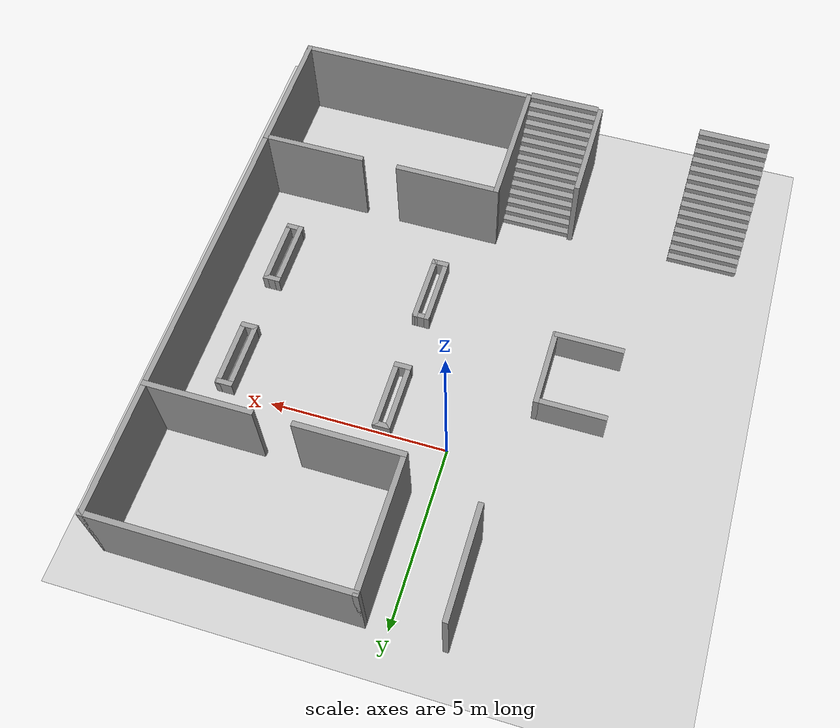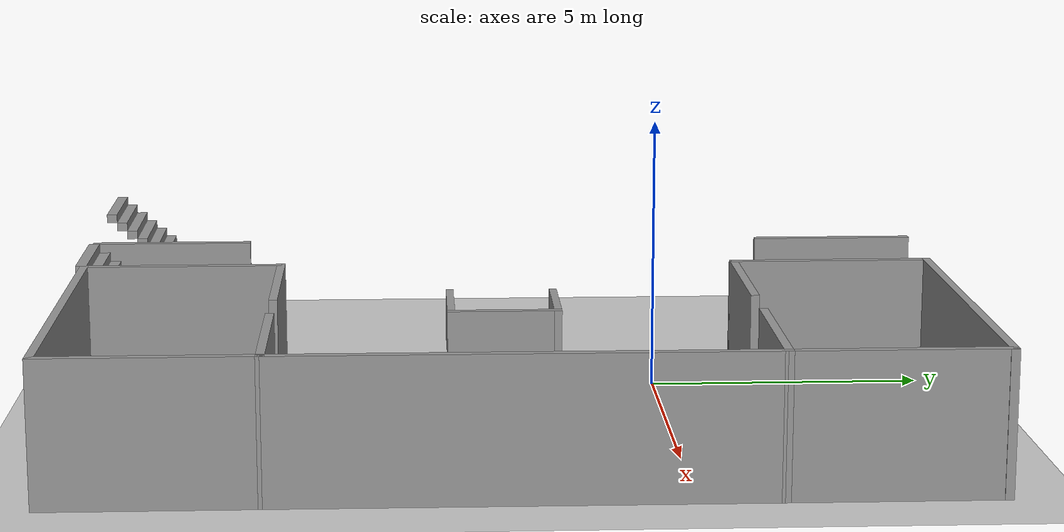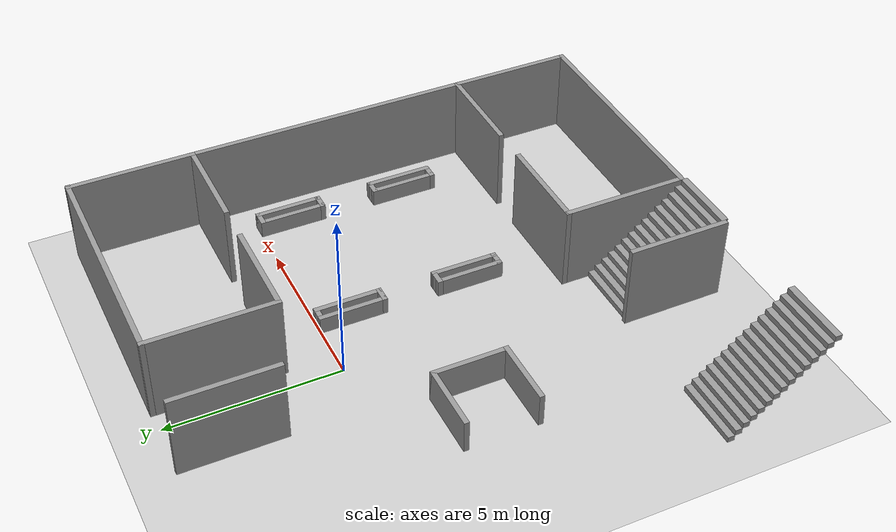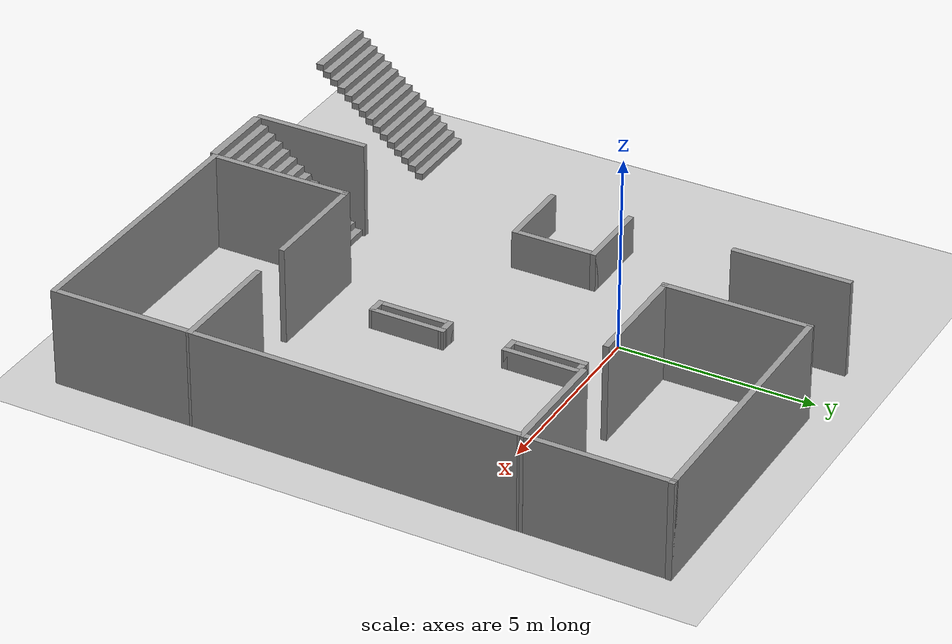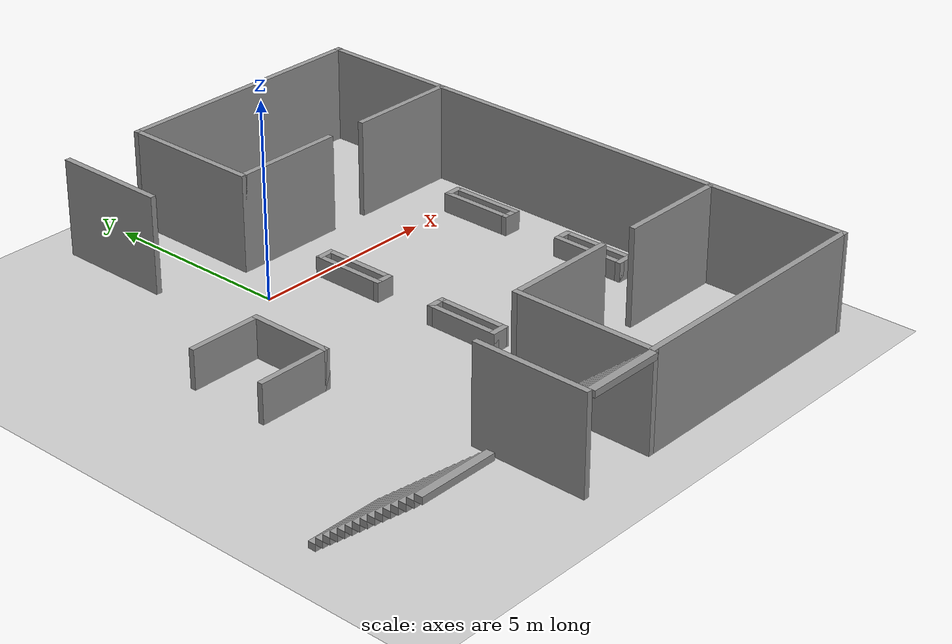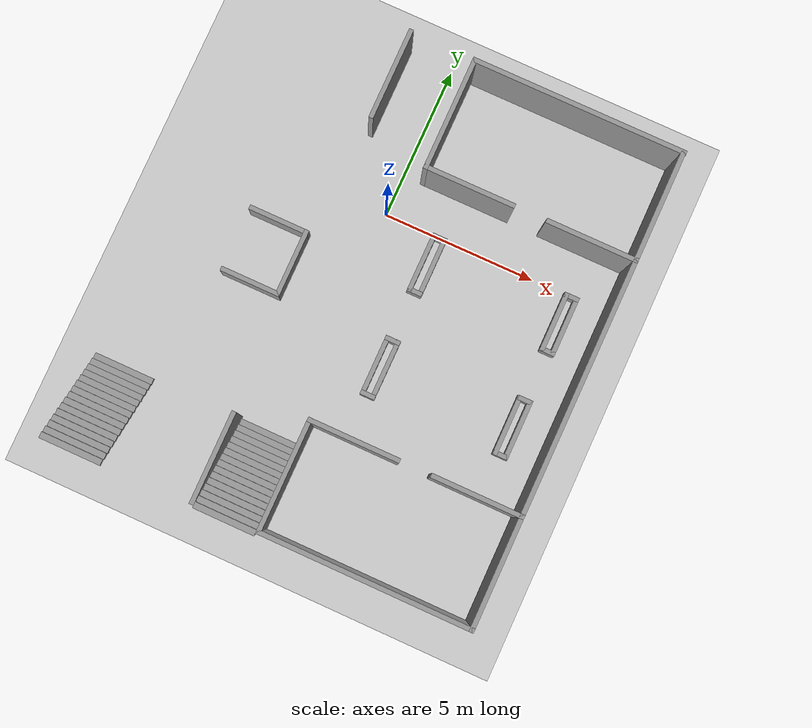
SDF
<sdf version="1.7">
 <world name="default">
  <model name="ground_plane">
   <static>1</static>
   <link name="link">
    <collision name="collision">
     <geometry><plane><normal>0 0 1</normal><size>100 100</size></plane></geometry>
     <surface>
      <contact><collide_bitmask>65535</collide_bitmask></contact>
      <friction><ode><mu>100</mu><mu2>50</mu2></ode></friction>
     </surface>
    </collision>
    <visual name="visual">
     <cast_shadows>0</cast_shadows>
     <geometry><plane><normal>0 0 1</normal><size>100 100</size></plane></geometry>
     <material>
      <script><uri>file://media/materials/scripts/gazebo.material</uri><name>Gazebo/Grey</name></script>
     </material>
    </visual>
   </link>
  </model>
  <model name="Lobby">
   <pose>-2.92426 -2.79933 0 0 -0 0</pose>
   <link name="Stairs_2">
    <visual name="Stairs_2_Visual_0">
     <pose>-2.50769 -5.00037 0.083333 0 -0 0</pose>
     <geometry><box><size>2 0.2 0.166667</size></box></geometry>
     <material>
      <script><uri>file://media/materials/scripts/gazebo.material</uri><name>Gazebo/Grey</name></script>
      <ambient>1 1 1 1</ambient>
     </material>
     <meta><layer>0</layer></meta>
    </visual>
    <collision name="Stairs_2_Collision_0">
     <geometry><box><size>2 0.2 0.166667</size></box></geometry>
     <pose>-2.50769 -5.00037 0.083333 0 -0 0</pose>
    </collision>
    <visual name="Stairs_2_Visual_1">
     <pose>-2.50769 -5.20037 0.25 0 -0 0</pose>
     <geometry><box><size>2 0.2 0.166667</size></box></geometry>
     <material>
      <script><uri>file://media/materials/scripts/gazebo.material</uri><name>Gazebo/Grey</name></script>
      <ambient>1 1 1 1</ambient>
     </material>
     <meta><layer>0</layer></meta>
    </visual>
    <collision name="Stairs_2_Collision_1">
     <geometry><box><size>2 0.2 0.166667</size></box></geometry>
     <pose>-2.50769 -5.20037 0.25 0 -0 0</pose>
    </collision>
    <visual name="Stairs_2_Visual_2">
     <pose>-2.50769 -5.40037 0.416667 0 -0 0</pose>
     <geometry><box><size>2 0.2 0.166667</size></box></geometry>
     <material>
      <script><uri>file://media/materials/scripts/gazebo.material</uri><name>Gazebo/Grey</name></script>
      <ambient>1 1 1 1</ambient>
     </material>
     <meta><layer>0</layer></meta>
    </visual>
    <collision name="Stairs_2_Collision_2">
     <geometry><box><size>2 0.2 0.166667</size></box></geometry>
     <pose>-2.50769 -5.40037 0.416667 0 -0 0</pose>
    </collision>
    <visual name="Stairs_2_Visual_3">
     <pose>-2.50769 -5.60037 0.583333 0 -0 0</pose>
     <geometry><box><size>2 0.2 0.166667</size></box></geometry>
     <material>
      <script><uri>file://media/materials/scripts/gazebo.material</uri><name>Gazebo/Grey</name></script>
      <ambient>1 1 1 1</ambient>
     </material>
     <meta><layer>0</layer></meta>
    </visual>
    <collision name="Stairs_2_Collision_3">
     <geometry><box><size>2 0.2 0.166667</size></box></geometry>
     <pose>-2.50769 -5.60037 0.583333 0 -0 0</pose>
    </collision>
    <visual name="Stairs_2_Visual_4">
     <pose>-2.50769 -5.80037 0.75 0 -0 0</pose>
     <geometry><box><size>2 0.2 0.166667</size></box></geometry>
     <material>
      <script><uri>file://media/materials/scripts/gazebo.material</uri><name>Gazebo/Grey</name></script>
      <ambient>1 1 1 1</ambient>
     </material>
     <meta><layer>0</layer></meta>
    </visual>
    <collision name="Stairs_2_Collision_4">
     <geometry><box><size>2 0.2 0.166667</size></box></geometry>
     <pose>-2.50769 -5.80037 0.75 0 -0 0</pose>
    </collision>
    <visual name="Stairs_2_Visual_5">
     <pose>-2.50769 -6.00037 0.916667 0 -0 0</pose>
     <geometry><box><size>2 0.2 0.166667</size></box></geometry>
     <material>
      <script><uri>file://media/materials/scripts/gazebo.material</uri><name>Gazebo/Grey</name></script>
      <ambient>1 1 1 1</ambient>
     </material>
     <meta><layer>0</layer></meta>
    </visual>
    <collision name="Stairs_2_Collision_5">
     <geometry><box><size>2 0.2 0.166667</size></box></geometry>
     <pose>-2.50769 -6.00037 0.916667 0 -0 0</pose>
    </collision>
    <visual name="Stairs_2_Visual_6">
     <pose>-2.50769 -6.20037 1.08333 0 -0 0</pose>
     <geometry><box><size>2 0.2 0.166667</size></box></geometry>
     <material>
      <script><uri>file://media/materials/scripts/gazebo.material</uri><name>Gazebo/Grey</name></script>
      <ambient>1 1 1 1</ambient>
     </material>
     <meta><layer>0</layer></meta>
    </visual>
    <collision name="Stairs_2_Collision_6">
     <geometry><box><size>2 0.2 0.166667</size></box></geometry>
     <pose>-2.50769 -6.20037 1.08333 0 -0 0</pose>
    </collision>
    <visual name="Stairs_2_Visual_7">
     <pose>-2.50769 -6.40037 1.25 0 -0 0</pose>
     <geometry><box><size>2 0.2 0.166667</size></box></geometry>
     <material>
      <script><uri>file://media/materials/scripts/gazebo.material</uri><name>Gazebo/Grey</name></script>
      <ambient>1 1 1 1</ambient>
     </material>
     <meta><layer>0</layer></meta>
    </visual>
    <collision name="Stairs_2_Collision_7">
     <geometry><box><size>2 0.2 0.166667</size></box></geometry>
     <pose>-2.50769 -6.40037 1.25 0 -0 0</pose>
    </collision>
    <visual name="Stairs_2_Visual_8">
     <pose>-2.50769 -6.60037 1.41667 0 -0 0</pose>
     <geometry><box><size>2 0.2 0.166667</size></box></geometry>
     <material>
      <script><uri>file://media/materials/scripts/gazebo.material</uri><name>Gazebo/Grey</name></script>
      <ambient>1 1 1 1</ambient>
     </material>
     <meta><layer>0</layer></meta>
    </visual>
    <collision name="Stairs_2_Collision_8">
     <geometry><box><size>2 0.2 0.166667</size></box></geometry>
     <pose>-2.50769 -6.60037 1.41667 0 -0 0</pose>
    </collision>
    <visual name="Stairs_2_Visual_9">
     <pose>-2.50769 -6.80037 1.58333 0 -0 0</pose>
     <geometry><box><size>2 0.2 0.166667</size></box></geometry>
     <material>
      <script><uri>file://media/materials/scripts/gazebo.material</uri><name>Gazebo/Grey</name></script>
      <ambient>1 1 1 1</ambient>
     </material>
     <meta><layer>0</layer></meta>
    </visual>
    <collision name="Stairs_2_Collision_9">
     <geometry><box><size>2 0.2 0.166667</size></box></geometry>
     <pose>-2.50769 -6.80037 1.58333 0 -0 0</pose>
    </collision>
    <visual name="Stairs_2_Visual_10">
     <pose>-2.50769 -7.00037 1.75 0 -0 0</pose>
     <geometry><box><size>2 0.2 0.166667</size></box></geometry>
     <material>
      <script><uri>file://media/materials/scripts/gazebo.material</uri><name>Gazebo/Grey</name></script>
      <ambient>1 1 1 1</ambient>
     </material>
     <meta><layer>0</layer></meta>
    </visual>
    <collision name="Stairs_2_Collision_10">
     <geometry><box><size>2 0.2 0.166667</size></box></geometry>
     <pose>-2.50769 -7.00037 1.75 0 -0 0</pose>
    </collision>
    <visual name="Stairs_2_Visual_11">
     <pose>-2.50769 -7.20037 1.91667 0 -0 0</pose>
     <geometry><box><size>2 0.2 0.166667</size></box></geometry>
     <material>
      <script><uri>file://media/materials/scripts/gazebo.material</uri><name>Gazebo/Grey</name></script>
      <ambient>1 1 1 1</ambient>
     </material>
     <meta><layer>0</layer></meta>
    </visual>
    <collision name="Stairs_2_Collision_11">
     <geometry><box><size>2 0.2 0.166667</size></box></geometry>
     <pose>-2.50769 -7.20037 1.91667 0 -0 0</pose>
    </collision>
    <visual name="Stairs_2_Visual_12">
     <pose>-2.50769 -7.40037 2.08333 0 -0 0</pose>
     <geometry><box><size>2 0.2 0.166667</size></box></geometry>
     <material>
      <script><uri>file://media/materials/scripts/gazebo.material</uri><name>Gazebo/Grey</name></script>
      <ambient>1 1 1 1</ambient>
     </material>
     <meta><layer>0</layer></meta>
    </visual>
    <collision name="Stairs_2_Collision_12">
     <geometry><box><size>2 0.2 0.166667</size></box></geometry>
     <pose>-2.50769 -7.40037 2.08333 0 -0 0</pose>
    </collision>
    <visual name="Stairs_2_Visual_13">
     <pose>-2.50769 -7.60037 2.25 0 -0 0</pose>
     <geometry><box><size>2 0.2 0.166667</size></box></geometry>
     <material>
      <script><uri>file://media/materials/scripts/gazebo.material</uri><name>Gazebo/Grey</name></script>
      <ambient>1 1 1 1</ambient>
     </material>
     <meta><layer>0</layer></meta>
    </visual>
    <collision name="Stairs_2_Collision_13">
     <geometry><box><size>2 0.2 0.166667</size></box></geometry>
     <pose>-2.50769 -7.60037 2.25 0 -0 0</pose>
    </collision>
    <visual name="Stairs_2_Visual_14">
     <pose>-2.50769 -7.80037 2.41667 0 -0 0</pose>
     <geometry><box><size>2 0.2 0.166667</size></box></geometry>
     <material>
      <script><uri>file://media/materials/scripts/gazebo.material</uri><name>Gazebo/Grey</name></script>
      <ambient>1 1 1 1</ambient>
     </material>
     <meta><layer>0</layer></meta>
    </visual>
    <collision name="Stairs_2_Collision_14">
     <geometry><box><size>2 0.2 0.166667</size></box></geometry>
     <pose>-2.50769 -7.80037 2.41667 0 -0 0</pose>
    </collision>
   </link>
   <link name="Stairs_3">
    <visual name="Stairs_3_Visual_0">
     <pose>2.48331 -4.98887 0.083333 0 -0 0</pose>
     <geometry><box><size>2 0.2 0.166667</size></box></geometry>
     <material>
      <script><uri>file://media/materials/scripts/gazebo.material</uri><name>Gazebo/Grey</name></script>
      <ambient>1 1 1 1</ambient>
     </material>
     <meta><layer>0</layer></meta>
    </visual>
    <collision name="Stairs_3_Collision_0">
     <geometry><box><size>2 0.2 0.166667</size></box></geometry>
     <pose>2.48331 -4.98887 0.083333 0 -0 0</pose>
    </collision>
    <visual name="Stairs_3_Visual_1">
     <pose>2.48331 -5.18887 0.25 0 -0 0</pose>
     <geometry><box><size>2 0.2 0.166667</size></box></geometry>
     <material>
      <script><uri>file://media/materials/scripts/gazebo.material</uri><name>Gazebo/Grey</name></script>
      <ambient>1 1 1 1</ambient>
     </material>
     <meta><layer>0</layer></meta>
    </visual>
    <collision name="Stairs_3_Collision_1">
     <geometry><box><size>2 0.2 0.166667</size></box></geometry>
     <pose>2.48331 -5.18887 0.25 0 -0 0</pose>
    </collision>
    <visual name="Stairs_3_Visual_2">
     <pose>2.48331 -5.38887 0.416667 0 -0 0</pose>
     <geometry><box><size>2 0.2 0.166667</size></box></geometry>
     <material>
      <script><uri>file://media/materials/scripts/gazebo.material</uri><name>Gazebo/Grey</name></script>
      <ambient>1 1 1 1</ambient>
     </material>
     <meta><layer>0</layer></meta>
    </visual>
    <collision name="Stairs_3_Collision_2">
     <geometry><box><size>2 0.2 0.166667</size></box></geometry>
     <pose>2.48331 -5.38887 0.416667 0 -0 0</pose>
    </collision>
    <visual name="Stairs_3_Visual_3">
     <pose>2.48331 -5.58887 0.583333 0 -0 0</pose>
     <geometry><box><size>2 0.2 0.166667</size></box></geometry>
     <material>
      <script><uri>file://media/materials/scripts/gazebo.material</uri><name>Gazebo/Grey</name></script>
      <ambient>1 1 1 1</ambient>
     </material>
     <meta><layer>0</layer></meta>
    </visual>
    <collision name="Stairs_3_Collision_3">
     <geometry><box><size>2 0.2 0.166667</size></box></geometry>
     <pose>2.48331 -5.58887 0.583333 0 -0 0</pose>
    </collision>
    <visual name="Stairs_3_Visual_4">
     <pose>2.48331 -5.78887 0.75 0 -0 0</pose>
     <geometry><box><size>2 0.2 0.166667</size></box></geometry>
     <material>
      <script><uri>file://media/materials/scripts/gazebo.material</uri><name>Gazebo/Grey</name></script>
      <ambient>1 1 1 1</ambient>
     </material>
     <meta><layer>0</layer></meta>
    </visual>
    <collision name="Stairs_3_Collision_4">
     <geometry><box><size>2 0.2 0.166667</size></box></geometry>
     <pose>2.48331 -5.78887 0.75 0 -0 0</pose>
    </collision>
    <visual name="Stairs_3_Visual_5">
     <pose>2.48331 -5.98887 0.916667 0 -0 0</pose>
     <geometry><box><size>2 0.2 0.166667</size></box></geometry>
     <material>
      <script><uri>file://media/materials/scripts/gazebo.material</uri><name>Gazebo/Grey</name></script>
      <ambient>1 1 1 1</ambient>
     </material>
     <meta><layer>0</layer></meta>
    </visual>
    <collision name="Stairs_3_Collision_5">
     <geometry><box><size>2 0.2 0.166667</size></box></geometry>
     <pose>2.48331 -5.98887 0.916667 0 -0 0</pose>
    </collision>
    <visual name="Stairs_3_Visual_6">
     <pose>2.48331 -6.18887 1.08333 0 -0 0</pose>
     <geometry><box><size>2 0.2 0.166667</size></box></geometry>
     <material>
      <script><uri>file://media/materials/scripts/gazebo.material</uri><name>Gazebo/Grey</name></script>
      <ambient>1 1 1 1</ambient>
     </material>
     <meta><layer>0</layer></meta>
    </visual>
    <collision name="Stairs_3_Collision_6">
     <geometry><box><size>2 0.2 0.166667</size></box></geometry>
     <pose>2.48331 -6.18887 1.08333 0 -0 0</pose>
    </collision>
    <visual name="Stairs_3_Visual_7">
     <pose>2.48331 -6.38887 1.25 0 -0 0</pose>
     <geometry><box><size>2 0.2 0.166667</size></box></geometry>
     <material>
      <script><uri>file://media/materials/scripts/gazebo.material</uri><name>Gazebo/Grey</name></script>
      <ambient>1 1 1 1</ambient>
     </material>
     <meta><layer>0</layer></meta>
    </visual>
    <collision name="Stairs_3_Collision_7">
     <geometry><box><size>2 0.2 0.166667</size></box></geometry>
     <pose>2.48331 -6.38887 1.25 0 -0 0</pose>
    </collision>
    <visual name="Stairs_3_Visual_8">
     <pose>2.48331 -6.58887 1.41667 0 -0 0</pose>
     <geometry><box><size>2 0.2 0.166667</size></box></geometry>
     <material>
      <script><uri>file://media/materials/scripts/gazebo.material</uri><name>Gazebo/Grey</name></script>
      <ambient>1 1 1 1</ambient>
     </material>
     <meta><layer>0</layer></meta>
    </visual>
    <collision name="Stairs_3_Collision_8">
     <geometry><box><size>2 0.2 0.166667</size></box></geometry>
     <pose>2.48331 -6.58887 1.41667 0 -0 0</pose>
    </collision>
    <visual name="Stairs_3_Visual_9">
     <pose>2.48331 -6.78887 1.58333 0 -0 0</pose>
     <geometry><box><size>2 0.2 0.166667</size></box></geometry>
     <material>
      <script><uri>file://media/materials/scripts/gazebo.material</uri><name>Gazebo/Grey</name></script>
      <ambient>1 1 1 1</ambient>
     </material>
     <meta><layer>0</layer></meta>
    </visual>
    <collision name="Stairs_3_Collision_9">
     <geometry><box><size>2 0.2 0.166667</size></box></geometry>
     <pose>2.48331 -6.78887 1.58333 0 -0 0</pose>
    </collision>
    <visual name="Stairs_3_Visual_10">
     <pose>2.48331 -6.98887 1.75 0 -0 0</pose>
     <geometry><box><size>2 0.2 0.166667</size></box></geometry>
     <material>
      <script><uri>file://media/materials/scripts/gazebo.material</uri><name>Gazebo/Grey</name></script>
      <ambient>1 1 1 1</ambient>
     </material>
     <meta><layer>0</layer></meta>
    </visual>
    <collision name="Stairs_3_Collision_10">
     <geometry><box><size>2 0.2 0.166667</size></box></geometry>
     <pose>2.48331 -6.98887 1.75 0 -0 0</pose>
    </collision>
    <visual name="Stairs_3_Visual_11">
     <pose>2.48331 -7.18887 1.91667 0 -0 0</pose>
     <geometry><box><size>2 0.2 0.166667</size></box></geometry>
     <material>
      <script><uri>file://media/materials/scripts/gazebo.material</uri><name>Gazebo/Grey</name></script>
      <ambient>1 1 1 1</ambient>
     </material>
     <meta><layer>0</layer></meta>
    </visual>
    <collision name="Stairs_3_Collision_11">
     <geometry><box><size>2 0.2 0.166667</size></box></geometry>
     <pose>2.48331 -7.18887 1.91667 0 -0 0</pose>
    </collision>
    <visual name="Stairs_3_Visual_12">
     <pose>2.48331 -7.38887 2.08333 0 -0 0</pose>
     <geometry><box><size>2 0.2 0.166667</size></box></geometry>
     <material>
      <script><uri>file://media/materials/scripts/gazebo.material</uri><name>Gazebo/Grey</name></script>
      <ambient>1 1 1 1</ambient>
     </material>
     <meta><layer>0</layer></meta>
    </visual>
    <collision name="Stairs_3_Collision_12">
     <geometry><box><size>2 0.2 0.166667</size></box></geometry>
     <pose>2.48331 -7.38887 2.08333 0 -0 0</pose>
    </collision>
    <visual name="Stairs_3_Visual_13">
     <pose>2.48331 -7.58887 2.25 0 -0 0</pose>
     <geometry><box><size>2 0.2 0.166667</size></box></geometry>
     <material>
      <script><uri>file://media/materials/scripts/gazebo.material</uri><name>Gazebo/Grey</name></script>
      <ambient>1 1 1 1</ambient>
     </material>
     <meta><layer>0</layer></meta>
    </visual>
    <collision name="Stairs_3_Collision_13">
     <geometry><box><size>2 0.2 0.166667</size></box></geometry>
     <pose>2.48331 -7.58887 2.25 0 -0 0</pose>
    </collision>
    <visual name="Stairs_3_Visual_14">
     <pose>2.48331 -7.78887 2.41667 0 -0 0</pose>
     <geometry><box><size>2 0.2 0.166667</size></box></geometry>
     <material>
      <script><uri>file://media/materials/scripts/gazebo.material</uri><name>Gazebo/Grey</name></script>
      <ambient>1 1 1 1</ambient>
     </material>
     <meta><layer>0</layer></meta>
    </visual>
    <collision name="Stairs_3_Collision_14">
     <geometry><box><size>2 0.2 0.166667</size></box></geometry>
     <pose>2.48331 -7.78887 2.41667 0 -0 0</pose>
    </collision>
   </link>
   <link name="Wall_108">
    <collision name="Wall_108_Collision">
     <geometry><box><size>2 0.15 0.5</size></box></geometry>
     <pose>0 0 0.25 0 -0 0</pose>
    </collision>
    <visual name="Wall_108_Visual">
     <pose>0 0 0.25 0 -0 0</pose>
     <geometry><box><size>2 0.15 0.5</size></box></geometry>
     <material>
      <script><uri>file://media/materials/scripts/gazebo.material</uri><name>Gazebo/Grey</name></script>
      <ambient>1 1 1 1</ambient>
     </material>
     <meta><layer>0</layer></meta>
    </visual>
    <pose>9.42426 1.82533 0 0 -0 -1.5708</pose>
   </link>
   <link name="Wall_109">
    <collision name="Wall_109_Collision">
     <geometry><box><size>0.5 0.15 0.5</size></box></geometry>
     <pose>0 0 0.25 0 -0 0</pose>
    </collision>
    <visual name="Wall_109_Visual">
     <pose>0 0 0.25 0 -0 0</pose>
     <geometry><box><size>0.5 0.15 0.5</size></box></geometry>
     <material>
      <script><uri>file://media/materials/scripts/gazebo.material</uri><name>Gazebo/Grey</name></script>
      <ambient>1 1 1 1</ambient>
     </material>
     <meta><layer>0</layer></meta>
    </visual>
    <pose>9.24926 0.900328 0 0 -0 3.14159</pose>
   </link>
   <link name="Wall_110">
    <collision name="Wall_110_Collision">
     <geometry><box><size>2 0.15 0.5</size></box></geometry>
     <pose>0 0 0.25 0 -0 0</pose>
    </collision>
    <visual name="Wall_110_Visual">
     <pose>0 0 0.25 0 -0 0</pose>
     <geometry><box><size>2 0.15 0.5</size></box></geometry>
     <material>
      <script><uri>file://media/materials/scripts/gazebo.material</uri><name>Gazebo/Grey</name></script>
      <ambient>1 1 1 1</ambient>
     </material>
     <meta><layer>0</layer></meta>
    </visual>
    <pose>9.07426 1.82533 0 0 -0 1.5708</pose>
   </link>
   <link name="Wall_111">
    <collision name="Wall_111_Collision">
     <geometry><box><size>0.5 0.15 0.5</size></box></geometry>
     <pose>0 0 0.25 0 -0 0</pose>
    </collision>
    <visual name="Wall_111_Visual">
     <pose>0 0 0.25 0 -0 0</pose>
     <geometry><box><size>0.5 0.15 0.5</size></box></geometry>
     <material>
      <script><uri>file://media/materials/scripts/gazebo.material</uri><name>Gazebo/Grey</name></script>
      <ambient>1 1 1 1</ambient>
     </material>
     <meta><layer>0</layer></meta>
    </visual>
    <pose>9.24926 2.75033 0 0 -0 0</pose>
   </link>
   <link name="Wall_116">
    <collision name="Wall_116_Collision">
     <geometry><box><size>2 0.15 0.5</size></box></geometry>
     <pose>0 0 0.25 0 -0 0</pose>
    </collision>
    <visual name="Wall_116_Visual">
     <pose>0 0 0.25 0 -0 0</pose>
     <geometry><box><size>2 0.15 0.5</size></box></geometry>
     <material>
      <script><uri>file://media/materials/scripts/gazebo.material</uri><name>Gazebo/Grey</name></script>
      <ambient>1 1 1 1</ambient>
     </material>
     <meta><layer>0</layer></meta>
    </visual>
    <pose>9.39826 -1.69667 0 0 -0 -1.5708</pose>
   </link>
   <link name="Wall_117">
    <collision name="Wall_117_Collision">
     <geometry><box><size>0.5 0.15 0.5</size></box></geometry>
     <pose>0 0 0.25 0 -0 0</pose>
    </collision>
    <visual name="Wall_117_Visual">
     <pose>0 0 0.25 0 -0 0</pose>
     <geometry><box><size>0.5 0.15 0.5</size></box></geometry>
     <material>
      <script><uri>file://media/materials/scripts/gazebo.material</uri><name>Gazebo/Grey</name></script>
      <ambient>1 1 1 1</ambient>
     </material>
     <meta><layer>0</layer></meta>
    </visual>
    <pose>9.22326 -2.62167 0 0 -0 3.14159</pose>
   </link>
   <link name="Wall_118">
    <collision name="Wall_118_Collision">
     <geometry><box><size>2 0.15 0.5</size></box></geometry>
     <pose>0 0 0.25 0 -0 0</pose>
    </collision>
    <visual name="Wall_118_Visual">
     <pose>0 0 0.25 0 -0 0</pose>
     <geometry><box><size>2 0.15 0.5</size></box></geometry>
     <material>
      <script><uri>file://media/materials/scripts/gazebo.material</uri><name>Gazebo/Grey</name></script>
      <ambient>1 1 1 1</ambient>
     </material>
     <meta><layer>0</layer></meta>
    </visual>
    <pose>9.04826 -1.69667 0 0 -0 1.5708</pose>
   </link>
   <link name="Wall_119">
    <collision name="Wall_119_Collision">
     <geometry><box><size>0.5 0.15 0.5</size></box></geometry>
     <pose>0 0 0.25 0 -0 0</pose>
    </collision>
    <visual name="Wall_119_Visual">
     <pose>0 0 0.25 0 -0 0</pose>
     <geometry><box><size>0.5 0.15 0.5</size></box></geometry>
     <material>
      <script><uri>file://media/materials/scripts/gazebo.material</uri><name>Gazebo/Grey</name></script>
      <ambient>1 1 1 1</ambient>
     </material>
     <meta><layer>0</layer></meta>
    </visual>
    <pose>9.22326 -0.771672 0 0 -0 0</pose>
   </link>
   <link name="Wall_16">
    <collision name="Wall_16_Collision">
     <geometry><box><size>3 0.15 2.5</size></box></geometry>
     <pose>0 0 1.25 0 -0 0</pose>
    </collision>
    <visual name="Wall_16_Visual">
     <pose>0 0 1.25 0 -0 0</pose>
     <geometry><box><size>3 0.15 2.5</size></box></geometry>
     <material>
      <script><uri>file://media/materials/scripts/gazebo.material</uri><name>Gazebo/Grey</name></script>
      <ambient>1 1 1 1</ambient>
     </material>
     <meta><layer>0</layer></meta>
    </visual>
    <pose>1.42544 6.39609 0 0 -0 1.5708</pose>
   </link>
   <link name="Wall_18">
    <collision name="Wall_18_Collision">
     <geometry><box><size>3.75 0.15 2.5</size></box></geometry>
     <pose>0 0 1.25 0 -0 0</pose>
    </collision>
    <visual name="Wall_18_Visual">
     <pose>0 0 1.25 0 -0 0</pose>
     <geometry><box><size>3.75 0.15 2.5</size></box></geometry>
     <material>
      <script><uri>file://media/materials/scripts/gazebo.material</uri><name>Gazebo/Grey</name></script>
      <ambient>1 1 1 1</ambient>
     </material>
     <meta><layer>0</layer></meta>
    </visual>
    <pose>3.5563 6.02251 0 0 -0 -1.5708</pose>
   </link>
   <link name="Wall_24">
    <collision name="Wall_24_Collision">
     <geometry><box><size>8.50004 0.15 2.5</size></box></geometry>
     <pose>0 0 1.25 0 -0 0</pose>
    </collision>
    <visual name="Wall_24_Visual">
     <pose>0 0 1.25 0 -0 0</pose>
     <geometry><box><size>8.50004 0.15 2.5</size></box></geometry>
     <material>
      <script><uri>file://media/materials/scripts/gazebo.material</uri><name>Gazebo/Grey</name></script>
      <ambient>1 1 1 1</ambient>
     </material>
     <meta><layer>0</layer></meta>
    </visual>
    <pose>10.4082 0.047506 0 0 -0 -1.574</pose>
   </link>
   <link name="Wall_39">
    <collision name="Wall_39_Collision">
     <geometry><box><size>3.75 0.15 2.5</size></box></geometry>
     <pose>0 0 1.25 0 -0 0</pose>
    </collision>
    <visual name="Wall_39_Visual">
     <pose>0 0 1.25 0 -0 0</pose>
     <geometry><box><size>3.75 0.15 2.5</size></box></geometry>
     <material>
      <script><uri>file://media/materials/scripts/gazebo.material</uri><name>Gazebo/Grey</name></script>
      <ambient>1 1 1 1</ambient>
     </material>
     <meta><layer>0</layer></meta>
    </visual>
    <pose>3.5448 -5.9275 0 0 -0 -1.5708</pose>
   </link>
   <link name="Wall_42">
    <collision name="Wall_42_Collision">
     <geometry><box><size>3 0.15 2.5</size></box></geometry>
     <pose>0 0 1.25 0 -0 0</pose>
    </collision>
    <visual name="Wall_42_Visual">
     <pose>0 0 1.25 0 -0 0</pose>
     <geometry><box><size>3 0.15 2.5</size></box></geometry>
     <material>
      <script><uri>file://media/materials/scripts/gazebo.material</uri><name>Gazebo/Grey</name></script>
      <ambient>1 1 1 1</ambient>
     </material>
     <meta><layer>0</layer></meta>
    </visual>
    <pose>1.41181 -6.31887 0 0 -0 -1.5708</pose>
   </link>
   <link name="Wall_53">
    <collision name="Wall_53_Collision">
     <geometry><box><size>7.03042 0.15 2.5</size></box></geometry>
     <pose>0 0 1.25 0 -0 0</pose>
    </collision>
    <visual name="Wall_53_Visual">
     <pose>0 0 1.25 0 -0 0</pose>
     <geometry><box><size>7.03042 0.15 2.5</size></box></geometry>
     <material>
      <script><uri>file://media/materials/scripts/gazebo.material</uri><name>Gazebo/Grey</name></script>
      <ambient>1 1 1 1</ambient>
     </material>
     <meta><layer>0</layer></meta>
    </visual>
    <pose>6.99651 7.82251 0 0 -0 0</pose>
   </link>
   <link name="Wall_54">
    <collision name="Wall_54_Collision">
     <geometry><box><size>3.75 0.15 2.5</size></box></geometry>
     <pose>0 0 1.25 0 -0 0</pose>
    </collision>
    <visual name="Wall_54_Visual">
     <pose>0 0 1.25 0 -0 0</pose>
     <geometry><box><size>3.75 0.15 2.5</size></box></geometry>
     <material>
      <script><uri>file://media/materials/scripts/gazebo.material</uri><name>Gazebo/Grey</name></script>
      <ambient>1 1 1 1</ambient>
     </material>
     <meta><layer>0</layer></meta>
    </visual>
    <pose>10.4215 6.02251 0 0 -0 -1.5708</pose>
   </link>
   <link name="Wall_55">
    <collision name="Wall_55_Collision">
     <geometry><box><size>3 0.15 2.5</size></box></geometry>
     <pose>0 0 1.25 0 -0 0</pose>
    </collision>
    <visual name="Wall_55_Visual">
     <pose>0 0 1.25 0 -0 0</pose>
     <geometry><box><size>3 0.15 2.5</size></box></geometry>
     <material>
      <script><uri>file://media/materials/scripts/gazebo.material</uri><name>Gazebo/Grey</name></script>
      <ambient>1 1 1 1</ambient>
     </material>
     <meta><layer>0</layer></meta>
    </visual>
    <pose>8.99651 4.22251 0 0 -0 3.14159</pose>
   </link>
   <link name="Wall_57">
    <collision name="Wall_57_Collision">
     <geometry><box><size>3 0.15 2.5</size></box></geometry>
     <pose>0 0 1.25 0 -0 0</pose>
    </collision>
    <visual name="Wall_57_Visual">
     <pose>0 0 1.25 0 -0 0</pose>
     <geometry><box><size>3 0.15 2.5</size></box></geometry>
     <material>
      <script><uri>file://media/materials/scripts/gazebo.material</uri><name>Gazebo/Grey</name></script>
      <ambient>1 1 1 1</ambient>
     </material>
     <meta><layer>0</layer></meta>
    </visual>
    <pose>4.9813 4.22251 0 0 -0 0</pose>
   </link>
   <link name="Wall_62">
    <collision name="Wall_62_Collision">
     <geometry><box><size>7 0.15 2.5</size></box></geometry>
     <pose>0 0 1.25 0 -0 0</pose>
    </collision>
    <visual name="Wall_62_Visual">
     <pose>0 0 1.25 0 -0 0</pose>
     <geometry><box><size>7 0.15 2.5</size></box></geometry>
     <material>
      <script><uri>file://media/materials/scripts/gazebo.material</uri><name>Gazebo/Grey</name></script>
      <ambient>1 1 1 1</ambient>
     </material>
     <meta><layer>0</layer></meta>
    </visual>
    <pose>6.9698 -7.72749 0 0 -0 0</pose>
   </link>
   <link name="Wall_63">
    <collision name="Wall_63_Collision">
     <geometry><box><size>3.75 0.15 2.5</size></box></geometry>
     <pose>0 0 1.25 0 -0 0</pose>
    </collision>
    <visual name="Wall_63_Visual">
     <pose>0 0 1.25 0 -0 0</pose>
     <geometry><box><size>3.75 0.15 2.5</size></box></geometry>
     <material>
      <script><uri>file://media/materials/scripts/gazebo.material</uri><name>Gazebo/Grey</name></script>
      <ambient>1 1 1 1</ambient>
     </material>
     <meta><layer>0</layer></meta>
    </visual>
    <pose>10.3948 -5.9275 0 0 -0 1.5708</pose>
   </link>
   <link name="Wall_69">
    <collision name="Wall_69_Collision">
     <geometry><box><size>3 0.15 2.5</size></box></geometry>
     <pose>0 0 1.25 0 -0 0</pose>
    </collision>
    <visual name="Wall_69_Visual">
     <pose>0 0 1.25 0 -0 0</pose>
     <geometry><box><size>3 0.15 2.5</size></box></geometry>
     <material>
      <script><uri>file://media/materials/scripts/gazebo.material</uri><name>Gazebo/Grey</name></script>
      <ambient>1 1 1 1</ambient>
     </material>
     <meta><layer>0</layer></meta>
    </visual>
    <pose>4.9698 -4.12749 0 0 -0 0</pose>
   </link>
   <link name="Wall_73">
    <collision name="Wall_73_Collision">
     <geometry><box><size>3 0.15 2.5</size></box></geometry>
     <pose>0 0 1.25 0 -0 0</pose>
    </collision>
    <visual name="Wall_73_Visual">
     <pose>0 0 1.25 0 -0 0</pose>
     <geometry><box><size>3 0.15 2.5</size></box></geometry>
     <material>
      <script><uri>file://media/materials/scripts/gazebo.material</uri><name>Gazebo/Grey</name></script>
      <ambient>1 1 1 1</ambient>
     </material>
     <meta><layer>0</layer></meta>
    </visual>
    <pose>8.9698 -4.12749 0 0 -0 0</pose>
   </link>
   <link name="Wall_76">
    <collision name="Wall_76_Collision">
     <geometry><box><size>2 0.15 1</size></box></geometry>
     <pose>0 0 0.5 0 -0 0</pose>
    </collision>
    <visual name="Wall_76_Visual">
     <pose>0 0 0.5 0 -0 0</pose>
     <geometry><box><size>2 0.15 1</size></box></geometry>
     <material>
      <script><uri>file://media/materials/scripts/gazebo.material</uri><name>Gazebo/Grey</name></script>
      <ambient>1 1 1 1</ambient>
     </material>
     <meta><layer>0</layer></meta>
    </visual>
    <pose>0.02926 -0.969672 0 0 -0 0</pose>
   </link>
   <link name="Wall_77">
    <collision name="Wall_77_Collision">
     <geometry><box><size>2.25 0.15 1</size></box></geometry>
     <pose>0 0 0.5 0 -0 0</pose>
    </collision>
    <visual name="Wall_77_Visual">
     <pose>0 0 0.5 0 -0 0</pose>
     <geometry><box><size>2.25 0.15 1</size></box></geometry>
     <material>
      <script><uri>file://media/materials/scripts/gazebo.material</uri><name>Gazebo/Grey</name></script>
      <ambient>1 1 1 1</ambient>
     </material>
     <meta><layer>0</layer></meta>
    </visual>
    <pose>0.95426 0.080328 0 0 -0 1.5708</pose>
   </link>
   <link name="Wall_78">
    <collision name="Wall_78_Collision">
     <geometry><box><size>2 0.15 1</size></box></geometry>
     <pose>0 0 0.5 0 -0 0</pose>
    </collision>
    <visual name="Wall_78_Visual">
     <pose>0 0 0.5 0 -0 0</pose>
     <geometry><box><size>2 0.15 1</size></box></geometry>
     <material>
      <script><uri>file://media/materials/scripts/gazebo.material</uri><name>Gazebo/Grey</name></script>
      <ambient>1 1 1 1</ambient>
     </material>
     <meta><layer>0</layer></meta>
    </visual>
    <pose>0.02926 1.13033 0 0 -0 3.14159</pose>
   </link>
   <link name="Wall_84">
    <collision name="Wall_84_Collision">
     <geometry><box><size>2 0.15 0.5</size></box></geometry>
     <pose>0 0 0.25 0 -0 0</pose>
    </collision>
    <visual name="Wall_84_Visual">
     <pose>0 0 0.25 0 -0 0</pose>
     <geometry><box><size>2 0.15 0.5</size></box></geometry>
     <material>
      <script><uri>file://media/materials/scripts/gazebo.material</uri><name>Gazebo/Grey</name></script>
      <ambient>1 1 1 1</ambient>
     </material>
     <meta><layer>0</layer></meta>
    </visual>
    <pose>4.57426 1.82533 0 0 -0 1.5708</pose>
   </link>
   <link name="Wall_85">
    <collision name="Wall_85_Collision">
     <geometry><box><size>0.5 0.15 0.5</size></box></geometry>
     <pose>0 0 0.25 0 -0 0</pose>
    </collision>
    <visual name="Wall_85_Visual">
     <pose>0 0 0.25 0 -0 0</pose>
     <geometry><box><size>0.5 0.15 0.5</size></box></geometry>
     <material>
      <script><uri>file://media/materials/scripts/gazebo.material</uri><name>Gazebo/Grey</name></script>
      <ambient>1 1 1 1</ambient>
     </material>
     <meta><layer>0</layer></meta>
    </visual>
    <pose>4.74926 2.75033 0 0 -0 0</pose>
   </link>
   <link name="Wall_86">
    <collision name="Wall_86_Collision">
     <geometry><box><size>2 0.15 0.5</size></box></geometry>
     <pose>0 0 0.25 0 -0 0</pose>
    </collision>
    <visual name="Wall_86_Visual">
     <pose>0 0 0.25 0 -0 0</pose>
     <geometry><box><size>2 0.15 0.5</size></box></geometry>
     <material>
      <script><uri>file://media/materials/scripts/gazebo.material</uri><name>Gazebo/Grey</name></script>
      <ambient>1 1 1 1</ambient>
     </material>
     <meta><layer>0</layer></meta>
    </visual>
    <pose>4.92426 1.82533 0 0 -0 -1.5708</pose>
   </link>
   <link name="Wall_87">
    <collision name="Wall_87_Collision">
     <geometry><box><size>0.5 0.15 0.5</size></box></geometry>
     <pose>0 0 0.25 0 -0 0</pose>
    </collision>
    <visual name="Wall_87_Visual">
     <pose>0 0 0.25 0 -0 0</pose>
     <geometry><box><size>0.5 0.15 0.5</size></box></geometry>
     <material>
      <script><uri>file://media/materials/scripts/gazebo.material</uri><name>Gazebo/Grey</name></script>
      <ambient>1 1 1 1</ambient>
     </material>
     <meta><layer>0</layer></meta>
    </visual>
    <pose>4.74926 0.900328 0 0 -0 3.14159</pose>
   </link>
   <link name="Wall_93">
    <collision name="Wall_93_Collision">
     <geometry><box><size>2 0.15 0.5</size></box></geometry>
     <pose>0 0 0.25 0 -0 0</pose>
    </collision>
    <visual name="Wall_93_Visual">
     <pose>0 0 0.25 0 -0 0</pose>
     <geometry><box><size>2 0.15 0.5</size></box></geometry>
     <material>
      <script><uri>file://media/materials/scripts/gazebo.material</uri><name>Gazebo/Grey</name></script>
      <ambient>1 1 1 1</ambient>
     </material>
     <meta><layer>0</layer></meta>
    </visual>
    <pose>4.57526 -1.69667 0 0 -0 -1.5708</pose>
   </link>
   <link name="Wall_94">
    <collision name="Wall_94_Collision">
     <geometry><box><size>0.491 0.15 0.5</size></box></geometry>
     <pose>0 0 0.25 0 -0 0</pose>
    </collision>
    <visual name="Wall_94_Visual">
     <pose>0 0 0.25 0 -0 0</pose>
     <geometry><box><size>0.491 0.15 0.5</size></box></geometry>
     <material>
      <script><uri>file://media/materials/scripts/gazebo.material</uri><name>Gazebo/Grey</name></script>
      <ambient>1 1 1 1</ambient>
     </material>
     <meta><layer>0</layer></meta>
    </visual>
    <pose>4.74576 -2.62167 0 0 -0 0</pose>
   </link>
   <link name="Wall_95">
    <collision name="Wall_95_Collision">
     <geometry><box><size>2.00002 0.15 0.5</size></box></geometry>
     <pose>0 0 0.25 0 -0 0</pose>
    </collision>
    <visual name="Wall_95_Visual">
     <pose>0 0 0.25 0 -0 0</pose>
     <geometry><box><size>2.00002 0.15 0.5</size></box></geometry>
     <material>
      <script><uri>file://media/materials/scripts/gazebo.material</uri><name>Gazebo/Grey</name></script>
      <ambient>1 1 1 1</ambient>
     </material>
     <meta><layer>0</layer></meta>
    </visual>
    <pose>4.92076 -1.69667 0 0 -0 1.56593</pose>
   </link>
   <link name="Wall_96">
    <collision name="Wall_96_Collision">
     <geometry><box><size>0.5 0.15 0.5</size></box></geometry>
     <pose>0 0 0.25 0 -0 0</pose>
    </collision>
    <visual name="Wall_96_Visual">
     <pose>0 0 0.25 0 -0 0</pose>
     <geometry><box><size>0.5 0.15 0.5</size></box></geometry>
     <material>
      <script><uri>file://media/materials/scripts/gazebo.material</uri><name>Gazebo/Grey</name></script>
      <ambient>1 1 1 1</ambient>
     </material>
     <meta><layer>0</layer></meta>
    </visual>
    <pose>4.75026 -0.771672 0 0 -0 3.14159</pose>
   </link>
   <static>1</static>
  </model>
 </world>
</sdf>
